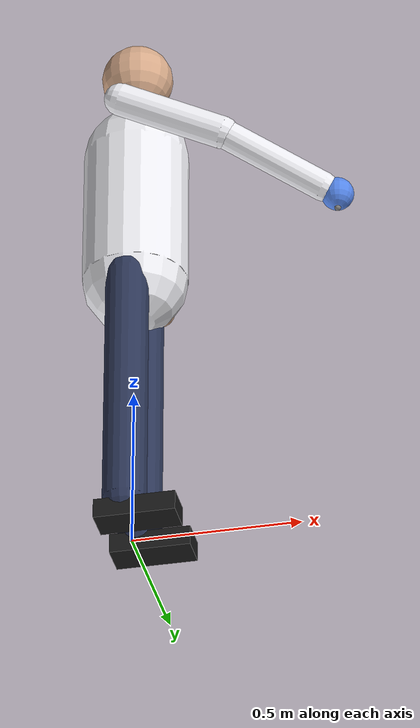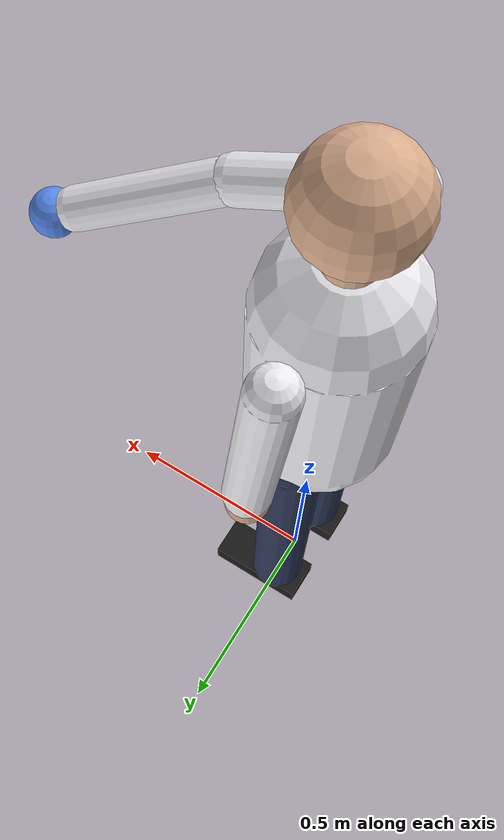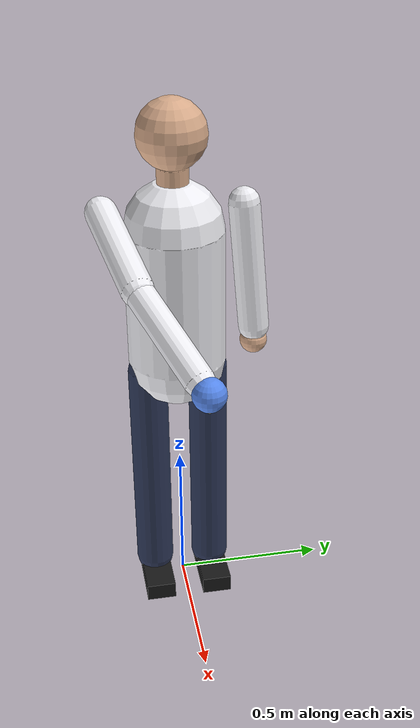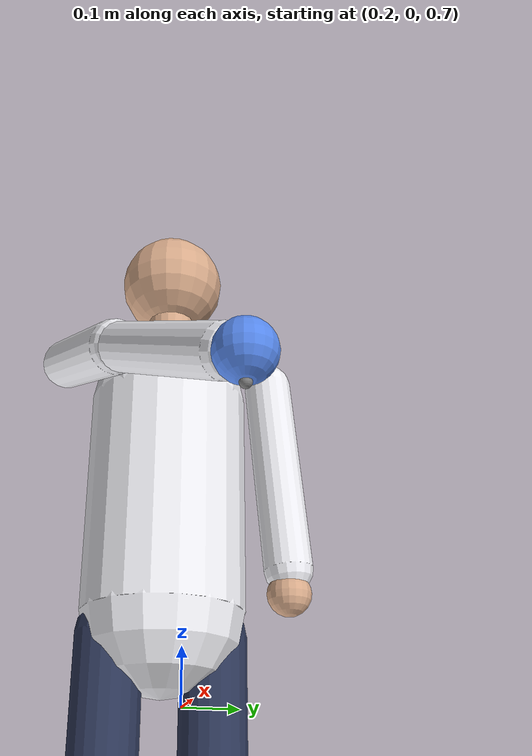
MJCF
<mujoco model="human figure">
    <default>
        <default class="human">
            <geom contype="0" conaffinity="0" group="1" type="capsule"/>
        </default>
    </default>

    <asset>
        <material name="human_skin" rgba="0.87 0.69 0.56 1"/>
        <material name="human_coat" rgba="0.95 0.95 0.97 1"/>
        <material name="human_pants" rgba="0.18 0.22 0.35 1"/>
        <material name="human_shoes" rgba="0.1 0.1 0.1 1"/>
        <material name="human_glove" rgba="0.35 0.55 0.95 1"/>
    </asset>

    <worldbody>
        <body name="human" childclass="human">
            <geom type="box" size="0.12 0.05 0.03" pos="0.04 0.1 0.03" material="human_shoes"/>
            <geom type="box" size="0.12 0.05 0.03" pos="0.04 -0.1 0.03" material="human_shoes"/>
            <geom size="0.065" fromto="0 0.1 0.08 0 0.1 0.86" material="human_pants"/>
            <geom size="0.065" fromto="0 -0.1 0.08 0 -0.1 0.86" material="human_pants"/>
            <geom size="0.16" fromto="0 0 0.9 0 0 1.35" material="human_coat"/>
            <geom size="0.05" fromto="0 0 1.48 0 0 1.55" material="human_skin"/>
            <geom type="sphere" size="0.11" pos="0 0 1.65" material="human_skin"/>
            <!-- left arm hanging -->
            <geom size="0.05" fromto="0 0.22 1.42 0.02 0.25 1.0" material="human_coat"/>
            <geom type="sphere" size="0.045" pos="0.02 0.25 0.95" material="human_skin"/>
            <!-- right arm reaching forward and slightly down -->
            <geom size="0.05" fromto="0 -0.22 1.42 0.3 -0.15 1.3" material="human_coat"/>
            <geom size="0.045" fromto="0.3 -0.15 1.3 0.58 -0.02 1.15" material="human_coat"/>
            <geom type="sphere" size="0.05" pos="0.62 0 1.13" material="human_glove"/>
            <site name="hand" pos="0.62 0 1.08" size="0.01"/>
        </body>
    </worldbody>
</mujoco>
